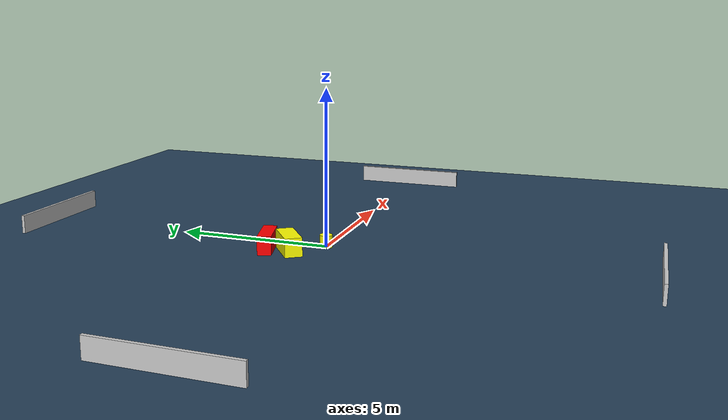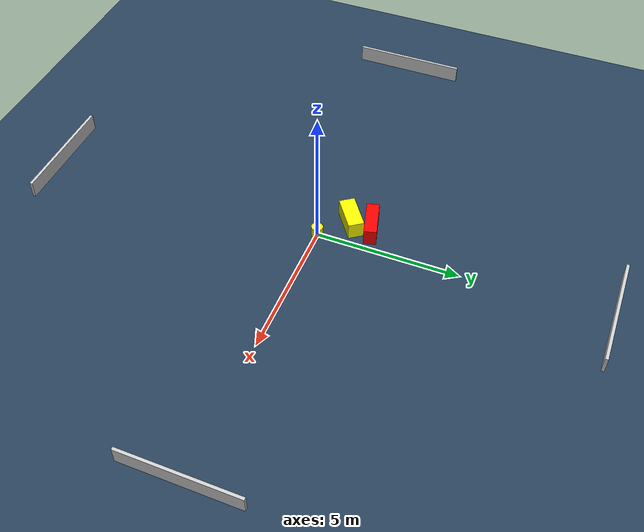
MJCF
<?xml version="1.0" ?>
<mujoco model="generated_environment">
  <option timestep="0.01" integrator="RK4" cone="elliptic"/>
  <default>
    <geom density="1"/>
  </default>
  <asset>
    <texture builtin="gradient" height="3072" name="skybox" rgb1="0.3 0.5 0.7" rgb2="0 0 0" type="skybox" width="512"/>
    <texture builtin="checker" height="300" name="groundplane" rgb1="0.2 0.3 0.4" rgb2="0.1 0.2 0.3" type="2d" width="300"/>
    <material name="groundplane" reflectance="0.2" texrepeat="5 5" texture="groundplane"/>
  </asset>
  <worldbody>
    <light dir="0 0 -1" directional="true" pos="0 0 1.5"/>
    <geom condim="3" friction="0.5 0.005 0.001" material="groundplane" name="floor" pos="0 0 0" size="0 0 0.05" type="plane"/>
    <body name="walls">
      <geom name="wall_1" condim="4" pos="-10.0 0.0 0.3" rgba="0.800000011920929 0.800000011920929 0.800000011920929 1.0" size="0.05 2.0 0.3" type="box"/>
      <geom name="wall_2" condim="4" pos="10.0 0.0 0.3" rgba="0.800000011920929 0.800000011920929 0.800000011920929 1.0" size="0.05 2.0 0.3" type="box"/>
      <geom name="wall_3" condim="4" pos="0.0 -10.0 0.3" rgba="0.800000011920929 0.800000011920929 0.800000011920929 1.0" size="2.0 0.05 0.3" type="box"/>
      <geom name="wall_4" condim="4" pos="0.0 10.0 0.3" rgba="0.800000011920929 0.800000011920929 0.800000011920929 1.0" size="2.0 0.05 0.3" type="box"/>
    </body>
    <body name="robot">
      <joint name="joint_x" type="slide" pos="0 0 0" axis="1 0 0"/>
      <joint name="joint_y" type="slide" pos="0 0 0" axis="0 1 0"/>
      <geom name="robot" type="cylinder" pos="0.0 0.0 0.2" size="0.2 0.2 0.0" mass="5.0" friction="1.0 0.005 0.0001" condim="4" rgba="1.0 1.0 0.0 1.0"/>
    </body>
    <body name="obstacle_1_movable">
      <geom name="obstacle_1_movable" condim="4" pos="-0.8947021271629105 0.8975191886268827 0.3" euler="0 0 215.93106858268087" friction="0.0 0.005 0.001" rgba="1.0 1.0 0.0 1.0" size="0.6176555557996001 0.2750330037132267 0.3" type="box" mass="0.1"/>
      <joint type="free"/>
    </body>
    <body name="obstacle_2_static">
      <geom name="obstacle_2_static" condim="4" pos="-0.8862275977388165 1.6280791082255435 0.3" euler="0 0 284.9458431252024" friction="0.0 0.005 0.001" rgba="1.0 0.0 0.0 1.0" size="0.21913646061341382 0.6623847846845662 0.3" type="box"/>
    </body>
  </worldbody>
  <actuator>
    <motor name="actuator_x" joint="joint_x" gear="1" ctrlrange="-1 1"/>
    <motor name="actuator_y" joint="joint_y" gear="1" ctrlrange="-1 1"/>
  </actuator>
</mujoco>
